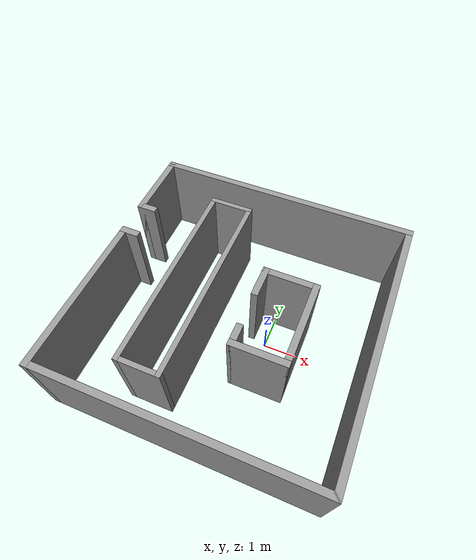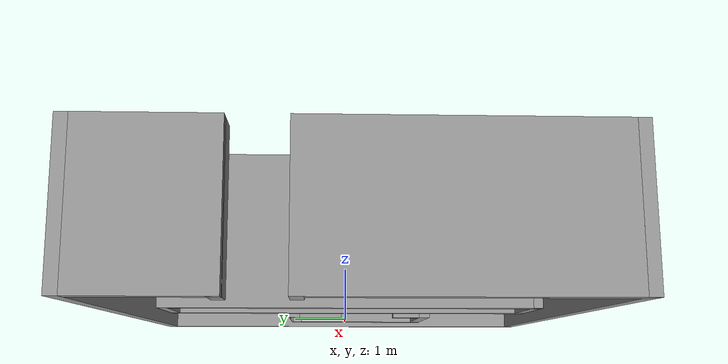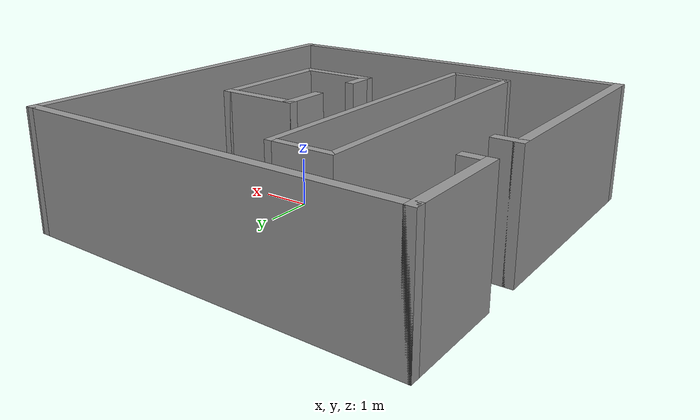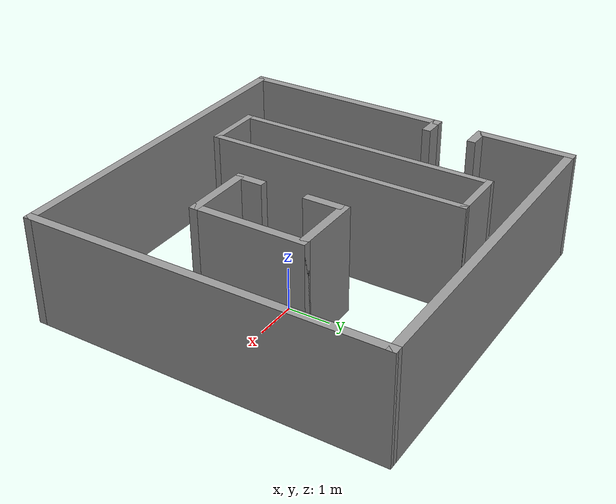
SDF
<?xml version='1.0'?>
<sdf version='1.7'>
  <model name='maze_2'>
    <pose>-1 0 0 0 -0 0</pose>
    <link name='Wall_0'>
      <collision name='Wall_0_Collision'>
        <geometry>
          <box>
            <size>1.7 0.2 2.5</size>
          </box>
        </geometry>
        <pose>0 0 1.25 0 -0 0</pose>
      </collision>
      <visual name='Wall_0_Visual'>
        <pose>0 0 1.25 0 -0 0</pose>
        <geometry>
          <box>
            <size>1.7 0.2 2.5</size>
          </box>
        </geometry>
        <material>
          <script>
            <uri>file://media/materials/scripts/gazebo.material</uri>
            <name>Gazebo/Grey</name>
          </script>
          <ambient>1 1 1 1</ambient>
        </material>
        <meta>
          <layer>0</layer>
        </meta>
      </visual>
      <pose>1.25 -1.5 0 0 -0 0</pose>
    </link>
    <link name='Wall_15'>
      <collision name='Wall_15_Collision'>
        <geometry>
          <box>
            <size>8.2 0.2 2.5</size>
          </box>
        </geometry>
        <pose>0 0 1.25 0 -0 0</pose>
      </collision>
      <visual name='Wall_15_Visual'>
        <pose>0 0 1.25 0 -0 0</pose>
        <geometry>
          <box>
            <size>8.2 0.2 2.5</size>
          </box>
        </geometry>
        <material>
          <script>
            <uri>file://media/materials/scripts/gazebo.material</uri>
            <name>Gazebo/Grey</name>
          </script>
          <ambient>1 1 1 1</ambient>
        </material>
        <meta>
          <layer>0</layer>
        </meta>
      </visual>
      <pose>4 0 0 0 -0 -1.5708</pose>
    </link>
    <link name='Wall_17'>
      <collision name='Wall_17_Collision'>
        <geometry>
          <box>
            <size>8.2 0.2 2.5</size>
          </box>
        </geometry>
        <pose>0 0 1.25 0 -0 0</pose>
      </collision>
      <visual name='Wall_17_Visual'>
        <pose>0 0 1.25 0 -0 0</pose>
        <geometry>
          <box>
            <size>8.2 0.2 2.5</size>
          </box>
        </geometry>
        <material>
          <script>
            <uri>file://media/materials/scripts/gazebo.material</uri>
            <name>Gazebo/Grey</name>
          </script>
          <ambient>1 1 1 1</ambient>
        </material>
        <meta>
          <layer>0</layer>
        </meta>
      </visual>
      <pose>-0 -4 0 0 -0 3.14159</pose>
    </link>
    <link name='Wall_21'>
      <collision name='Wall_21_Collision'>
        <geometry>
          <box>
            <size>8.2 0.2 2.5</size>
          </box>
        </geometry>
        <pose>0 0 1.25 0 -0 0</pose>
      </collision>
      <visual name='Wall_21_Visual'>
        <pose>0 0 1.25 0 -0 0</pose>
        <geometry>
          <box>
            <size>8.2 0.2 2.5</size>
          </box>
        </geometry>
        <material>
          <script>
            <uri>file://media/materials/scripts/gazebo.material</uri>
            <name>Gazebo/Grey</name>
          </script>
          <ambient>1 1 1 1</ambient>
        </material>
        <meta>
          <layer>0</layer>
        </meta>
      </visual>
      <pose>-0 4 0 0 -0 0</pose>
    </link>
    <link name='Wall_28'>
      <collision name='Wall_28_Collision'>
        <geometry>
          <box>
            <size>6.15 0.15 2.5</size>
          </box>
        </geometry>
        <pose>0 0 1.25 0 -0 0</pose>
      </collision>
      <visual name='Wall_28_Visual'>
        <pose>0 0 1.25 0 -0 0</pose>
        <geometry>
          <box>
            <size>6.15 0.15 2.5</size>
          </box>
        </geometry>
        <material>
          <script>
            <uri>file://media/materials/scripts/gazebo.material</uri>
            <name>Gazebo/Grey</name>
          </script>
          <ambient>1 1 1 1</ambient>
        </material>
        <meta>
          <layer>0</layer>
        </meta>
      </visual>
      <pose>-0.8 0 0 0 -0 -1.5708</pose>
    </link>
    <link name='Wall_29'>
      <collision name='Wall_29_Collision'>
        <geometry>
          <box>
            <size>1.35 0.15 2.5</size>
          </box>
        </geometry>
        <pose>0 0 1.25 0 -0 0</pose>
      </collision>
      <visual name='Wall_29_Visual'>
        <pose>0 0 1.25 0 -0 0</pose>
        <geometry>
          <box>
            <size>1.35 0.15 2.5</size>
          </box>
        </geometry>
        <material>
          <script>
            <uri>file://media/materials/scripts/gazebo.material</uri>
            <name>Gazebo/Grey</name>
          </script>
          <ambient>1 1 1 1</ambient>
        </material>
        <meta>
          <layer>0</layer>
        </meta>
      </visual>
      <pose>-1.4 -3 0 0 -0 3.14159</pose>
    </link>
    <link name='Wall_30'>
      <collision name='Wall_30_Collision'>
        <geometry>
          <box>
            <size>6.15 0.15 2.5</size>
          </box>
        </geometry>
        <pose>0 0 1.25 0 -0 0</pose>
      </collision>
      <visual name='Wall_30_Visual'>
        <pose>0 0 1.25 0 -0 0</pose>
        <geometry>
          <box>
            <size>6.15 0.15 2.5</size>
          </box>
        </geometry>
        <material>
          <script>
            <uri>file://media/materials/scripts/gazebo.material</uri>
            <name>Gazebo/Grey</name>
          </script>
          <ambient>1 1 1 1</ambient>
        </material>
        <meta>
          <layer>0</layer>
        </meta>
      </visual>
      <pose>-2 0 0 0 -0 1.5708</pose>
    </link>
    <link name='Wall_31'>
      <collision name='Wall_31_Collision'>
        <geometry>
          <box>
            <size>1.35 0.15 2.5</size>
          </box>
        </geometry>
        <pose>0 0 1.25 0 -0 0</pose>
      </collision>
      <visual name='Wall_31_Visual'>
        <pose>0 0 1.25 0 -0 0</pose>
        <geometry>
          <box>
            <size>1.35 0.15 2.5</size>
          </box>
        </geometry>
        <material>
          <script>
            <uri>file://media/materials/scripts/gazebo.material</uri>
            <name>Gazebo/Grey</name>
          </script>
          <ambient>1 1 1 1</ambient>
        </material>
        <meta>
          <layer>0</layer>
        </meta>
      </visual>
      <pose>-1.4 3 0 0 -0 0</pose>
    </link>
    <link name='Wall_34'>
      <collision name='Wall_34_Collision'>
        <geometry>
          <box>
            <size>2.3 0.2 2.5</size>
          </box>
        </geometry>
        <pose>0 0 1.25 0 -0 0</pose>
      </collision>
      <visual name='Wall_34_Visual'>
        <pose>0 0 1.25 0 -0 0</pose>
        <geometry>
          <box>
            <size>2.3 0.2 2.5</size>
          </box>
        </geometry>
        <material>
          <script>
            <uri>file://media/materials/scripts/gazebo.material</uri>
            <name>Gazebo/Grey</name>
          </script>
          <ambient>1 1 1 1</ambient>
        </material>
        <meta>
          <layer>0</layer>
        </meta>
      </visual>
      <pose>-4 2.95 0 0 -0 -1.5708</pose>
    </link>
    <link name='Wall_36'>
      <collision name='Wall_36_Collision'>
        <geometry>
          <box>
            <size>5 0.2 2.5</size>
          </box>
        </geometry>
        <pose>0 0 1.25 0 -0 0</pose>
      </collision>
      <visual name='Wall_36_Visual'>
        <pose>0 0 1.25 0 -0 0</pose>
        <geometry>
          <box>
            <size>5 0.2 2.5</size>
          </box>
        </geometry>
        <material>
          <script>
            <uri>file://media/materials/scripts/gazebo.material</uri>
            <name>Gazebo/Grey</name>
          </script>
          <ambient>1 1 1 1</ambient>
        </material>
        <meta>
          <layer>0</layer>
        </meta>
      </visual>
      <pose>-4 -1.6 0 0 -0 1.5708</pose>
    </link>
    <link name='Wall_37'>
      <collision name='Wall_37_Collision'>
        <geometry>
          <box>
            <size>0.6 0.2 2.5</size>
          </box>
        </geometry>
        <pose>0 0 1.25 0 -0 0</pose>
      </collision>
      <visual name='Wall_37_Visual'>
        <pose>0 0 1.25 0 -0 0</pose>
        <geometry>
          <box>
            <size>0.6 0.2 2.5</size>
          </box>
        </geometry>
        <material>
          <script>
            <uri>file://media/materials/scripts/gazebo.material</uri>
            <name>Gazebo/Grey</name>
          </script>
          <ambient>1 1 1 1</ambient>
        </material>
        <meta>
          <layer>0</layer>
        </meta>
      </visual>
      <pose>-3.8 0.8 0 0 -0 0</pose>
    </link>
    <link name='Wall_39'>
      <collision name='Wall_39_Collision'>
        <geometry>
          <box>
            <size>0.6 0.2 2.5</size>
          </box>
        </geometry>
        <pose>0 0 1.25 0 -0 0</pose>
      </collision>
      <visual name='Wall_39_Visual'>
        <pose>0 0 1.25 0 -0 0</pose>
        <geometry>
          <box>
            <size>0.6 0.2 2.5</size>
          </box>
        </geometry>
        <material>
          <script>
            <uri>file://media/materials/scripts/gazebo.material</uri>
            <name>Gazebo/Grey</name>
          </script>
          <ambient>1 1 1 1</ambient>
        </material>
        <meta>
          <layer>0</layer>
        </meta>
      </visual>
      <pose>-3.8 1.9 0 0 -0 0</pose>
    </link>
    <link name='Wall_42'>
      <collision name='Wall_42_Collision'>
        <geometry>
          <box>
            <size>2.7 0.2 2.5</size>
          </box>
        </geometry>
        <pose>0 0 1.25 0 -0 0</pose>
      </collision>
      <visual name='Wall_42_Visual'>
        <pose>0 0 1.25 0 -0 0</pose>
        <geometry>
          <box>
            <size>2.7 0.2 2.5</size>
          </box>
        </geometry>
        <material>
          <script>
            <uri>file://media/materials/scripts/gazebo.material</uri>
            <name>Gazebo/Grey</name>
          </script>
          <ambient>1 1 1 1</ambient>
        </material>
        <meta>
          <layer>0</layer>
        </meta>
      </visual>
      <pose>2 -0.25 0 0 -0 -1.5708</pose>
    </link>
    <link name='Wall_44'>
      <collision name='Wall_44_Collision'>
        <geometry>
          <box>
            <size>1 0.2 2.5</size>
          </box>
        </geometry>
        <pose>0 0 1.25 0 -0 0</pose>
      </collision>
      <visual name='Wall_44_Visual'>
        <pose>0 0 1.25 0 -0 0</pose>
        <geometry>
          <box>
            <size>1 0.2 2.5</size>
          </box>
        </geometry>
        <material>
          <script>
            <uri>file://media/materials/scripts/gazebo.material</uri>
            <name>Gazebo/Grey</name>
          </script>
          <ambient>1 1 1 1</ambient>
        </material>
        <meta>
          <layer>0</layer>
        </meta>
      </visual>
      <pose>0.5 0.6 0 0 -0 -1.5708</pose>
    </link>
    <link name='Wall_46'>
      <collision name='Wall_46_Collision'>
        <geometry>
          <box>
            <size>0.7 0.2 2.5</size>
          </box>
        </geometry>
        <pose>0 0 1.25 0 -0 0</pose>
      </collision>
      <visual name='Wall_46_Visual'>
        <pose>0 0 1.25 0 -0 0</pose>
        <geometry>
          <box>
            <size>0.7 0.2 2.5</size>
          </box>
        </geometry>
        <material>
          <script>
            <uri>file://media/materials/scripts/gazebo.material</uri>
            <name>Gazebo/Grey</name>
          </script>
          <ambient>1 1 1 1</ambient>
        </material>
        <meta>
          <layer>0</layer>
        </meta>
      </visual>
      <pose>0.5 -1.25 0 0 -0 1.5708</pose>
    </link>
    <link name='Wall_7'>
      <collision name='Wall_7_Collision'>
        <geometry>
          <box>
            <size>1.7 0.2 2.5</size>
          </box>
        </geometry>
        <pose>0 0 1.25 0 -0 0</pose>
      </collision>
      <visual name='Wall_7_Visual'>
        <pose>0 0 1.25 0 -0 0</pose>
        <geometry>
          <box>
            <size>1.7 0.2 2.5</size>
          </box>
        </geometry>
        <material>
          <script>
            <uri>file://media/materials/scripts/gazebo.material</uri>
            <name>Gazebo/Grey</name>
          </script>
          <ambient>1 1 1 1</ambient>
        </material>
        <meta>
          <layer>0</layer>
        </meta>
      </visual>
      <pose>1.25 1 0 0 -0 0</pose>
    </link>
    <static>1</static>
  </model>
</sdf>
